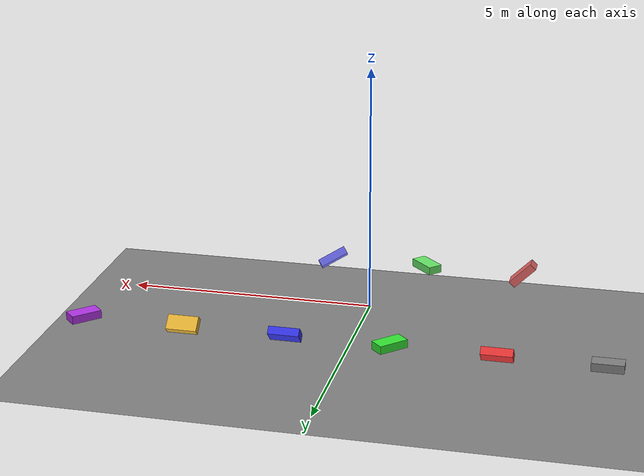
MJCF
<!-- 旋转表示方式演示: euler, quat, axisangle, zaxis, xyaxes -->
<mujoco model="rotation_demo">
    <compiler angle="radian"/>
    <option timestep="0.002" gravity="0 0 -9.81"/>

    <visual>
        <global realtime="1"/>
        <quality shadowsize="1024"/>
        <headlight diffuse="1 1 1" specular="0.5 0.5 0.5" active="1"/>
    </visual>

    <asset>
        <texture name="grid" type="2d" builtin="checker" width="512" height="512"
                 rgb1=".2 .2 .2" rgb2=".8 .8 .8"/>
        <material name="grid" texture="grid"/>
    </asset>

    <worldbody>
        <geom name="floor" type="plane" size="20 20 .01" material="grid" condim="3"/>

        <!-- 参考: 无旋转的原始方向 -->
        <body pos="-5 3 .6">
            <geom type="box" size="0.3 0.15 0.08" rgba=".5 .5 .5 1"/>
        </body>

        <!-- euler: 绕X轴45度, Y轴0度, Z轴0度 (单位: rad) -->
        <body pos="-3 3 .6" euler="0.785 0 0">
            <geom type="box" size="0.3 0.15 0.08" rgba=".9 .2 .2 1"/>
        </body>

        <!-- quat: 绕(0,0,1)轴旋转45度的四元数 (wxyz顺序!) -->
        <!-- cos(22.5°)=0.924, sin(22.5°)*0=0, sin(22.5°)*0=0, sin(22.5°)*1=0.383 -->
        <body pos="-1 3 .6" quat="0.924 0 0 0.383">
            <geom type="box" size="0.3 0.15 0.08" rgba=".2 .9 .2 1"/>
        </body>

        <!-- axisangle: 绕(1,0,0)轴旋转45度 -->
        <body pos="1 3 .6" axisangle="1 0 0 0.785">
            <geom type="box" size="0.3 0.15 0.08" rgba=".2 .2 .9 1"/>
        </body>

        <!-- zaxis: 指定Z轴指向(0,0.5,0.5)方向 -->
        <body pos="3 3 .6" zaxis="0 0.707 0.707">
            <geom type="box" size="0.3 0.15 0.08" rgba=".9 .7 .2 1"/>
        </body>

        <!-- xyaxes: 同时指定X轴和Y轴方向 -->
        <body pos="5 3 .6" xyaxes="0.707 0.707 0  -0.707 0.707 0">
            <geom type="box" size="0.3 0.15 0.08" rgba=".7 .2 .9 1"/>
        </body>

        <!-- 动态演示: 用euler做不同旋转量的box -->
        <body pos="-3 -1 .6" euler="0 0.785 0">
            <geom type="box" size="0.3 0.15 0.08" rgba=".9 .4 .4 1"/>
        </body>
        <body pos="-1 -1 .6" euler="0 0 -0.785">
            <geom type="box" size="0.3 0.15 0.08" rgba=".4 .9 .4 1"/>
        </body>
        <body pos="1 -1 .6" euler="0.4 0.6 0.2">
            <geom type="box" size="0.3 0.15 0.08" rgba=".4 .4 .9 1"/>
        </body>
    </worldbody>
</mujoco>
